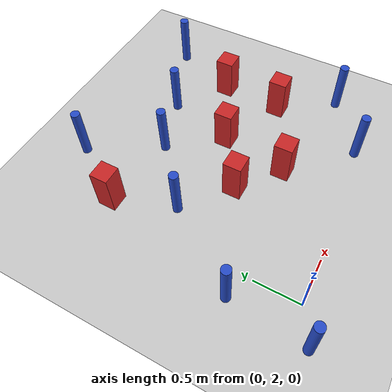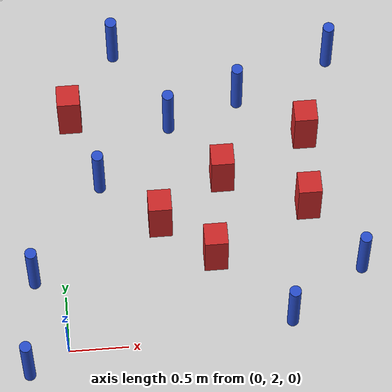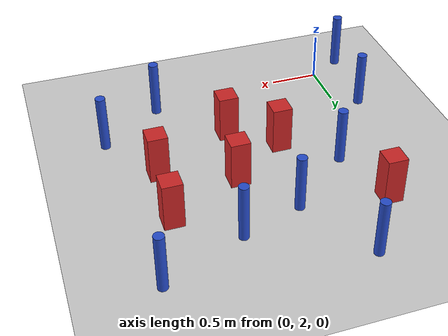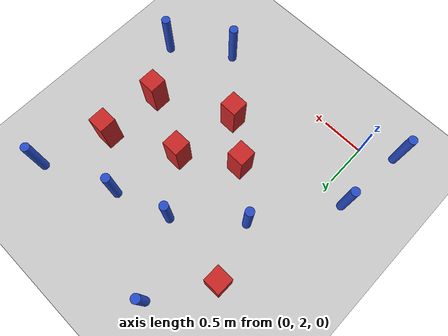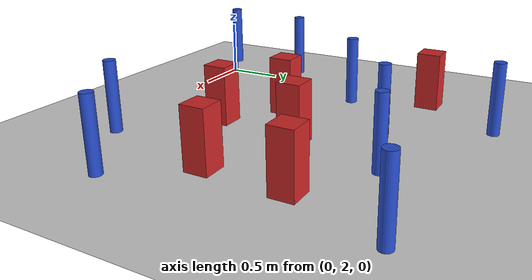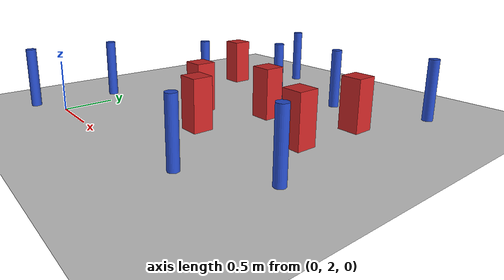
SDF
<sdf version="1.6">
 <world name="default">
  <model name="ground_plane">
   <static>1</static>
   <link name="link">
    <collision name="collision">
     <geometry><plane><normal>0 0 1</normal><size>100 100</size></plane></geometry>
     <surface><friction><ode><mu>100</mu><mu2>50</mu2></ode></friction></surface>
    </collision>
    <visual name="visual">
     <cast_shadows>0</cast_shadows>
     <geometry><plane><normal>0 0 1</normal><size>100 100</size></plane></geometry>
     <material>
      <ambient>1.0 1.0 1.0 1.0</ambient>
      <diffuse>0.8 0.8 0.8 1.0</diffuse>
      <specular>0.01 0.01 0.01 1.000000</specular>
     </material>
    </visual>
   </link>
  </model>
  <model name="square_post_obstacle8">
   <static>true</static>
   <pose>1.29878756717 2.75642417488 1.91545236811e-07 -7.35059704564e-06 1.12565212e-07 2.39332434364e-05</pose>
   <link name="link">
    <pose>0 0 0.25 0 -0 0</pose>
    <inertial>
     <mass>100</mass>
     <inertia>
      <ixx>0.166667</ixx>
      <ixy>0</ixy>
      <ixz>0</ixz>
      <iyy>0.166667</iyy>
      <iyz>0</iyz>
      <izz>0.166667</izz>
     </inertia>
    </inertial>
    <collision name="collision"><geometry><box><size>.2 .2 .5</size></box></geometry></collision>
    <visual name="visual">
     <geometry><box><size>.2 .2 .5</size></box></geometry>
     <material>
      <script><name>Gazebo/Red</name><uri>file://media/materials/scripts/gazebo.material</uri></script>
     </material>
    </visual>
   </link>
  </model>
  <model name="pole_obstacle16">
   <static>true</static>
   <pose>-0.340629063459 1.8112324864 7.38925637345e-09 -8.47170692798e-08 1.24976765025e-08 -1.74513093018e-07</pose>
   <link name="link">
    <pose>0 0 0.3 0 -0 0</pose>
    <inertial>
     <mass>1</mass>
     <inertia><ixx>0.145833</ixx><ixy>0</ixy><ixz>0</ixz><iyy>0.145833</iyy><iyz>0</iyz><izz>0.125</izz></inertia>
    </inertial>
    <collision name="collision">
     <geometry><cylinder><radius>0.05</radius><length>.6</length></cylinder></geometry>
    </collision>
    <visual name="visual">
     <geometry><cylinder><radius>0.05</radius><length>.6</length></cylinder></geometry>
     <material>
      <script><name>Gazebo/Blue</name><uri>file://media/materials/scripts/gazebo.material</uri></script>
     </material>
    </visual>
   </link>
  </model>
  <model name="pole_obstacle32">
   <static>true</static>
   <pose>0.992300856398 4.07284689529 7.38925637345e-09 -8.471706928e-08 1.24976765144e-08 -1.74513093012e-07</pose>
   <link name="link">
    <pose>0 0 0.3 0 -0 0</pose>
    <inertial>
     <mass>1</mass>
     <inertia><ixx>0.145833</ixx><ixy>0</ixy><ixz>0</ixz><iyy>0.145833</iyy><iyz>0</iyz><izz>0.125</izz></inertia>
    </inertial>
    <collision name="collision">
     <geometry><cylinder><radius>0.05</radius><length>.6</length></cylinder></geometry>
    </collision>
    <visual name="visual">
     <geometry><cylinder><radius>0.05</radius><length>.6</length></cylinder></geometry>
     <material>
      <script><name>Gazebo/Blue</name><uri>file://media/materials/scripts/gazebo.material</uri></script>
     </material>
    </visual>
   </link>
  </model>
  <model name="pole_obstacle74">
   <static>true</static>
   <pose>1.6143871549 4.2832349217 7.38925637345e-09 -8.47170692799e-08 1.24976765033e-08 -1.74513093018e-07</pose>
   <link name="link">
    <pose>0 0 0.3 0 -0 0</pose>
    <inertial>
     <mass>1</mass>
     <inertia><ixx>0.145833</ixx><ixy>0</ixy><ixz>0</ixz><iyy>0.145833</iyy><iyz>0</iyz><izz>0.125</izz></inertia>
    </inertial>
    <collision name="collision">
     <geometry><cylinder><radius>0.05</radius><length>.6</length></cylinder></geometry>
    </collision>
    <visual name="visual">
     <geometry><cylinder><radius>0.05</radius><length>.6</length></cylinder></geometry>
     <material>
      <script><name>Gazebo/Blue</name><uri>file://media/materials/scripts/gazebo.material</uri></script>
     </material>
    </visual>
   </link>
  </model>
  <model name="square_post_obstacle73">
   <static>true</static>
   <pose>0.849298990074 3.11304717606 1.91545236811e-07 -7.35059704564e-06 1.12565212e-07 2.39332434364e-05</pose>
   <link name="link">
    <pose>0 0 0.25 0 -0 0</pose>
    <inertial>
     <mass>100</mass>
     <inertia>
      <ixx>0.166667</ixx>
      <ixy>0</ixy>
      <ixz>0</ixz>
      <iyy>0.166667</iyy>
      <iyz>0</iyz>
      <izz>0.166667</izz>
     </inertia>
    </inertial>
    <collision name="collision"><geometry><box><size>.2 .2 .5</size></box></geometry></collision>
    <visual name="visual">
     <geometry><box><size>.2 .2 .5</size></box></geometry>
     <material>
      <script><name>Gazebo/Red</name><uri>file://media/materials/scripts/gazebo.material</uri></script>
     </material>
    </visual>
   </link>
  </model>
  <model name="square_post_obstacle77">
   <static>true</static>
   <pose>0.12801445875 4.19459039145 1.91545236811e-07 -7.35059704564e-06 1.12565212e-07 2.39332434364e-05</pose>
   <link name="link">
    <pose>0 0 0.25 0 -0 0</pose>
    <inertial>
     <mass>100</mass>
     <inertia>
      <ixx>0.166667</ixx>
      <ixy>0</ixy>
      <ixz>0</ixz>
      <iyy>0.166667</iyy>
      <iyz>0</iyz>
      <izz>0.166667</izz>
     </inertia>
    </inertial>
    <collision name="collision"><geometry><box><size>.2 .2 .5</size></box></geometry></collision>
    <visual name="visual">
     <geometry><box><size>.2 .2 .5</size></box></geometry>
     <material>
      <script><name>Gazebo/Red</name><uri>file://media/materials/scripts/gazebo.material</uri></script>
     </material>
    </visual>
   </link>
  </model>
  <model name="pole_obstacle93">
   <static>true</static>
   <pose>0.349221355884 3.52798118626 7.38925637345e-09 -8.471706928e-08 1.24976765084e-08 -1.74513093017e-07</pose>
   <link name="link">
    <pose>0 0 0.3 0 -0 0</pose>
    <inertial>
     <mass>1</mass>
     <inertia><ixx>0.145833</ixx><ixy>0</ixy><ixz>0</ixz><iyy>0.145833</iyy><iyz>0</iyz><izz>0.125</izz></inertia>
    </inertial>
    <collision name="collision">
     <geometry><cylinder><radius>0.05</radius><length>.6</length></cylinder></geometry>
    </collision>
    <visual name="visual">
     <geometry><cylinder><radius>0.05</radius><length>.6</length></cylinder></geometry>
     <material>
      <script><name>Gazebo/Blue</name><uri>file://media/materials/scripts/gazebo.material</uri></script>
     </material>
    </visual>
   </link>
  </model>
  <model name="square_post_obstacle102">
   <static>true</static>
   <pose>2.13735632605 3.18171864107 1.91545236811e-07 -7.35059704564e-06 1.12565212e-07 2.39332434364e-05</pose>
   <link name="link">
    <pose>0 0 0.25 0 -0 0</pose>
    <inertial>
     <mass>100</mass>
     <inertia>
      <ixx>0.166667</ixx>
      <ixy>0</ixy>
      <ixz>0</ixz>
      <iyy>0.166667</iyy>
      <iyz>0</iyz>
      <izz>0.166667</izz>
     </inertia>
    </inertial>
    <collision name="collision"><geometry><box><size>.2 .2 .5</size></box></geometry></collision>
    <visual name="visual">
     <geometry><box><size>.2 .2 .5</size></box></geometry>
     <material>
      <script><name>Gazebo/Red</name><uri>file://media/materials/scripts/gazebo.material</uri></script>
     </material>
    </visual>
   </link>
  </model>
  <model name="pole_obstacle116">
   <static>true</static>
   <pose>-0.260102825469 2.65175239321 7.38925637345e-09 -8.471706928e-08 1.24976765139e-08 -1.74513093014e-07</pose>
   <link name="link">
    <pose>0 0 0.3 0 -0 0</pose>
    <inertial>
     <mass>1</mass>
     <inertia><ixx>0.145833</ixx><ixy>0</ixy><ixz>0</ixz><iyy>0.145833</iyy><iyz>0</iyz><izz>0.125</izz></inertia>
    </inertial>
    <collision name="collision">
     <geometry><cylinder><radius>0.05</radius><length>.6</length></cylinder></geometry>
    </collision>
    <visual name="visual">
     <geometry><cylinder><radius>0.05</radius><length>.6</length></cylinder></geometry>
     <material>
      <script><name>Gazebo/Blue</name><uri>file://media/materials/scripts/gazebo.material</uri></script>
     </material>
    </visual>
   </link>
  </model>
  <model name="square_post_obstacle174">
   <static>true</static>
   <pose>1.41731749386 3.50843459891 1.91545236811e-07 -7.35059704564e-06 1.12565212e-07 2.39332434364e-05</pose>
   <link name="link">
    <pose>0 0 0.25 0 -0 0</pose>
    <inertial>
     <mass>100</mass>
     <inertia>
      <ixx>0.166667</ixx>
      <ixy>0</ixy>
      <ixz>0</ixz>
      <iyy>0.166667</iyy>
      <iyz>0</iyz>
      <izz>0.166667</izz>
     </inertia>
    </inertial>
    <collision name="collision"><geometry><box><size>.2 .2 .5</size></box></geometry></collision>
    <visual name="visual">
     <geometry><box><size>.2 .2 .5</size></box></geometry>
     <material>
      <script><name>Gazebo/Red</name><uri>file://media/materials/scripts/gazebo.material</uri></script>
     </material>
    </visual>
   </link>
  </model>
  <model name="pole_obstacle177">
   <static>true</static>
   <pose>1.90437619206 2.12844670781 7.38925637345e-09 -8.47170692799e-08 1.24976765053e-08 -1.74513093017e-07</pose>
   <link name="link">
    <pose>0 0 0.3 0 -0 0</pose>
    <inertial>
     <mass>1</mass>
     <inertia><ixx>0.145833</ixx><ixy>0</ixy><ixz>0</ixz><iyy>0.145833</iyy><iyz>0</iyz><izz>0.125</izz></inertia>
    </inertial>
    <collision name="collision">
     <geometry><cylinder><radius>0.05</radius><length>.6</length></cylinder></geometry>
    </collision>
    <visual name="visual">
     <geometry><cylinder><radius>0.05</radius><length>.6</length></cylinder></geometry>
     <material>
      <script><name>Gazebo/Blue</name><uri>file://media/materials/scripts/gazebo.material</uri></script>
     </material>
    </visual>
   </link>
  </model>
  <model name="pole_obstacle207">
   <static>true</static>
   <pose>2.54537764187 2.57507922487 7.38925637345e-09 -8.47170692798e-08 1.24976764939e-08 -1.74513093025e-07</pose>
   <link name="link">
    <pose>0 0 0.3 0 -0 0</pose>
    <inertial>
     <mass>1</mass>
     <inertia><ixx>0.145833</ixx><ixy>0</ixy><ixz>0</ixz><iyy>0.145833</iyy><iyz>0</iyz><izz>0.125</izz></inertia>
    </inertial>
    <collision name="collision">
     <geometry><cylinder><radius>0.05</radius><length>.6</length></cylinder></geometry>
    </collision>
    <visual name="visual">
     <geometry><cylinder><radius>0.05</radius><length>.6</length></cylinder></geometry>
     <material>
      <script><name>Gazebo/Blue</name><uri>file://media/materials/scripts/gazebo.material</uri></script>
     </material>
    </visual>
   </link>
  </model>
  <model name="square_post_obstacle211">
   <static>true</static>
   <pose>2.17440684905 3.87998951506 1.91545236811e-07 -7.35059704564e-06 1.12565212e-07 2.39332434364e-05</pose>
   <link name="link">
    <pose>0 0 0.25 0 -0 0</pose>
    <inertial>
     <mass>100</mass>
     <inertia>
      <ixx>0.166667</ixx>
      <ixy>0</ixy>
      <ixz>0</ixz>
      <iyy>0.166667</iyy>
      <iyz>0</iyz>
      <izz>0.166667</izz>
     </inertia>
    </inertial>
    <collision name="collision"><geometry><box><size>.2 .2 .5</size></box></geometry></collision>
    <visual name="visual">
     <geometry><box><size>.2 .2 .5</size></box></geometry>
     <material>
      <script><name>Gazebo/Red</name><uri>file://media/materials/scripts/gazebo.material</uri></script>
     </material>
    </visual>
   </link>
  </model>
  <model name="pole_obstacle228">
   <static>true</static>
   <pose>0.545936009575 4.84711002078 7.38925637345e-09 -8.47170692799e-08 1.24976765073e-08 -1.74513093015e-07</pose>
   <link name="link">
    <pose>0 0 0.3 0 -0 0</pose>
    <inertial>
     <mass>1</mass>
     <inertia><ixx>0.145833</ixx><ixy>0</ixy><ixz>0</ixz><iyy>0.145833</iyy><iyz>0</iyz><izz>0.125</izz></inertia>
    </inertial>
    <collision name="collision">
     <geometry><cylinder><radius>0.05</radius><length>.6</length></cylinder></geometry>
    </collision>
    <visual name="visual">
     <geometry><cylinder><radius>0.05</radius><length>.6</length></cylinder></geometry>
     <material>
      <script><name>Gazebo/Blue</name><uri>file://media/materials/scripts/gazebo.material</uri></script>
     </material>
    </visual>
   </link>
  </model>
  <model name="pole_obstacle234">
   <static>true</static>
   <pose>2.45265000957 4.64195002078 7.38925637345e-09 -8.47170692798e-08 1.24976765033e-08 -1.74513093019e-07</pose>
   <link name="link">
    <pose>0 0 0.3 0 -0 0</pose>
    <inertial>
     <mass>1</mass>
     <inertia><ixx>0.145833</ixx><ixy>0</ixy><ixz>0</ixz><iyy>0.145833</iyy><iyz>0</iyz><izz>0.125</izz></inertia>
    </inertial>
    <collision name="collision">
     <geometry><cylinder><radius>0.05</radius><length>.6</length></cylinder></geometry>
    </collision>
    <visual name="visual">
     <geometry><cylinder><radius>0.05</radius><length>.6</length></cylinder></geometry>
     <material>
      <script><name>Gazebo/Blue</name><uri>file://media/materials/scripts/gazebo.material</uri></script>
     </material>
    </visual>
   </link>
  </model>
 </world>
</sdf>
